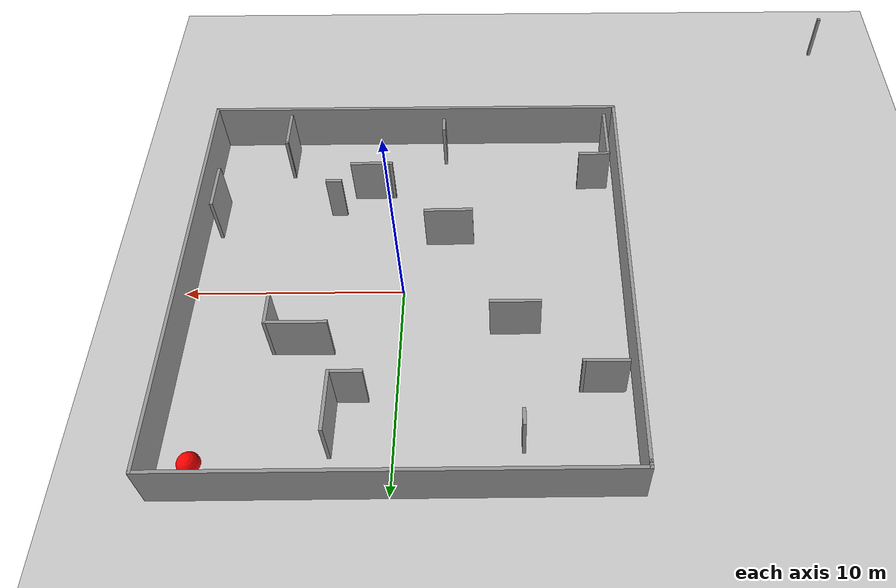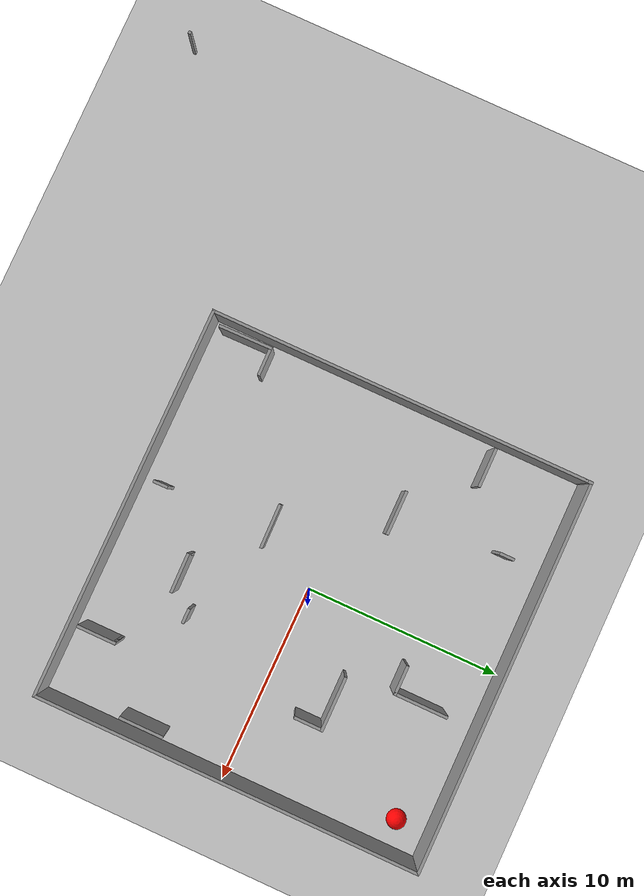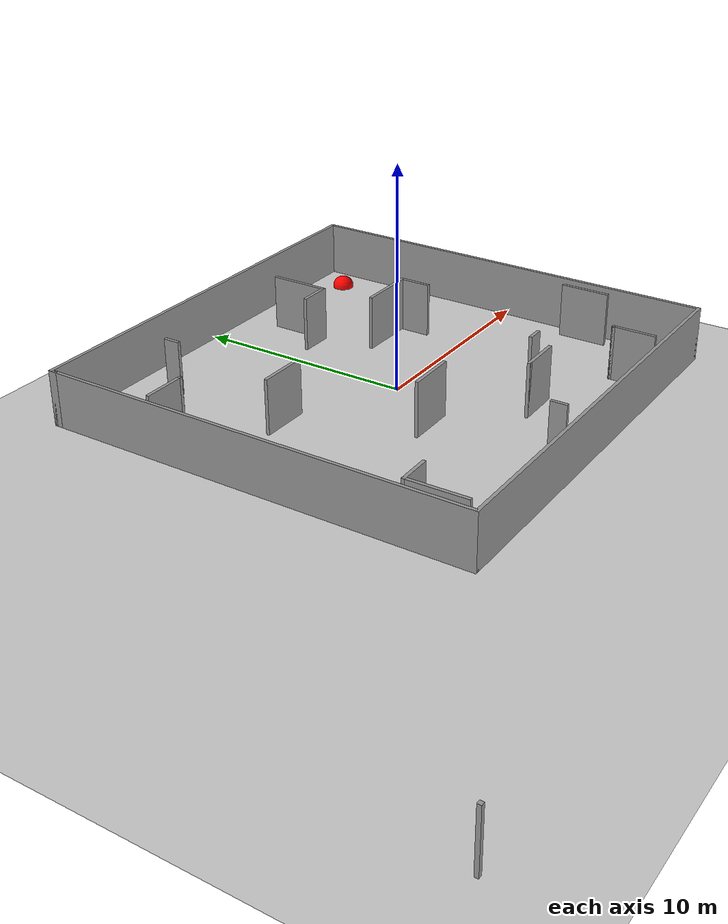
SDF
<sdf version="1.7">
 <world name="default">
  <light name="sun" type="directional">
   <pose>0 0 10 0 -0 0</pose>
   <diffuse>0.8 0.8 0.8 1</diffuse>
   <specular>0.2 0.2 0.2 1</specular>
   <attenuation>
    <range>1000</range>
    <constant>0.9</constant>
    <linear>0.01</linear>
    <quadratic>0.001</quadratic>
   </attenuation>
   <direction>-0.5 0.1 -0.9</direction>
   <spot><inner_angle>0</inner_angle><outer_angle>0</outer_angle><falloff>0</falloff></spot>
  </light>
  <model name="ground_plane">
   <static>1</static>
   <link name="link">
    <collision name="collision">
     <geometry><plane><normal>0 0 1</normal><size>100 100</size></plane></geometry>
     <surface><friction><ode><mu>100</mu><mu2>50</mu2></ode></friction></surface>
    </collision>
    <visual name="visual">
     <cast_shadows>0</cast_shadows>
     <geometry><plane><normal>0 0 1</normal><size>100 100</size></plane></geometry>
     <material>
      <script><uri>file://media/materials/scripts/gazebo.material</uri><name>Gazebo/Grey</name></script>
     </material>
    </visual>
   </link>
  </model>
  <gravity>0 0 -9.8</gravity>
  <magnetic_field>6e-06 2.3e-05 -4.2e-05</magnetic_field>
  <atmosphere type="adiabatic"/>
  <physics type="ode">
   <max_step_size>0.001</max_step_size>
   <real_time_factor>1</real_time_factor>
   <real_time_update_rate>1000</real_time_update_rate>
  </physics>
  <scene><ambient>0.4 0.4 0.4 1</ambient><background>0.7 0.7 0.7 1</background><shadows>1</shadows></scene>
  <spherical_coordinates>
   <surface_model>EARTH_WGS84</surface_model>
   <latitude_deg>0</latitude_deg>
   <longitude_deg>0</longitude_deg>
   <elevation>0</elevation>
   <heading_deg>0</heading_deg>
  </spherical_coordinates>
  <model name="ObstacleCoruse1">
   <pose>-3.57605 5.23593 0 0 -0 0</pose>
   <link name="Wall_0">
    <collision name="Wall_0_Collision">
     <geometry><box><size>2 0.15 2.5</size></box></geometry>
     <pose>0 0 1.25 0 -0 0</pose>
    </collision>
    <visual name="Wall_0_Visual">
     <pose>0 0 1.25 0 -0 0</pose>
     <geometry><box><size>2 0.15 2.5</size></box></geometry>
     <material>
      <script><uri>file://media/materials/scripts/gazebo.material</uri><name>Gazebo/Grey</name></script>
      <ambient>1 1 1 1</ambient>
     </material>
     <meta><layer>0</layer></meta>
    </visual>
    <pose>-5.24025 0.008745 0 0 -0 0</pose>
   </link>
   <link name="Wall_1">
    <collision name="Wall_1_Collision">
     <geometry><box><size>0.15 0.15 2.5</size></box></geometry>
     <pose>0 0 1.25 0 -0 0</pose>
    </collision>
    <visual name="Wall_1_Visual">
     <pose>0 0 1.25 0 -0 0</pose>
     <geometry><box><size>0.15 0.15 2.5</size></box></geometry>
     <material>
      <script><uri>file://media/materials/scripts/gazebo.material</uri><name>Gazebo/Grey</name></script>
      <ambient>1 1 1 1</ambient>
     </material>
     <meta><layer>0</layer></meta>
    </visual>
    <pose>-4.31525 0.008745 0 0 -0 0</pose>
   </link>
   <link name="Wall_3">
    <collision name="Wall_3_Collision">
     <geometry><box><size>0.75 0.15 2.5</size></box></geometry>
     <pose>0 0 1.25 0 -0 0</pose>
    </collision>
    <visual name="Wall_3_Visual">
     <pose>0 0 1.25 0 -0 0</pose>
     <geometry><box><size>0.75 0.15 2.5</size></box></geometry>
     <material>
      <script><uri>file://media/materials/scripts/gazebo.material</uri><name>Gazebo/Grey</name></script>
      <ambient>1 1 1 1</ambient>
     </material>
     <meta><layer>0</layer></meta>
    </visual>
    <pose>-1.81022 2.54214 0 0 -0 -1.5708</pose>
   </link>
   <link name="Wall_5">
    <collision name="Wall_5_Collision">
     <geometry><box><size>2.25 0.15 2.5</size></box></geometry>
     <pose>0 0 1.25 0 -0 0</pose>
    </collision>
    <visual name="Wall_5_Visual">
     <pose>0 0 1.25 0 -0 0</pose>
     <geometry><box><size>2.25 0.15 2.5</size></box></geometry>
     <material>
      <script><uri>file://media/materials/scripts/gazebo.material</uri><name>Gazebo/Grey</name></script>
      <ambient>1 1 1 1</ambient>
     </material>
     <meta><layer>0</layer></meta>
    </visual>
    <pose>-1.52978 -2.99955 0 0 -0 0</pose>
   </link>
   <link name="Wall_8">
    <collision name="Wall_8_Collision">
     <geometry><box><size>2.75 0.15 2.5</size></box></geometry>
     <pose>0 0 1.25 0 -0 0</pose>
    </collision>
    <visual name="Wall_8_Visual">
     <pose>0 0 1.25 0 -0 0</pose>
     <geometry><box><size>2.75 0.15 2.5</size></box></geometry>
     <material>
      <script><uri>file://media/materials/scripts/gazebo.material</uri><name>Gazebo/Grey</name></script>
      <ambient>1 1 1 1</ambient>
     </material>
     <meta><layer>0</layer></meta>
    </visual>
    <pose>6.16525 1.69955 0 0 -0 -1.5708</pose>
   </link>
   <link name="Wall_9">
    <collision name="Wall_9_Collision">
     <geometry><box><size>1.5 0.15 2.5</size></box></geometry>
     <pose>0 0 1.25 0 -0 0</pose>
    </collision>
    <visual name="Wall_9_Visual">
     <pose>0 0 1.25 0 -0 0</pose>
     <geometry><box><size>1.5 0.15 2.5</size></box></geometry>
     <material>
      <script><uri>file://media/materials/scripts/gazebo.material</uri><name>Gazebo/Grey</name></script>
      <ambient>1 1 1 1</ambient>
     </material>
     <meta><layer>0</layer></meta>
    </visual>
    <pose>5.49025 0.399546 0 0 -0 3.14159</pose>
   </link>
   <static>1</static>
  </model>
  <model name="ContourWorld">
   <pose>-6.15354 -3.16657 0 0 -0 0</pose>
   <link name="Wall_10">
    <collision name="Wall_10_Collision">
     <geometry><box><size>20 0.15 2.5</size></box></geometry>
     <pose>0 0 1.25 0 -0 0</pose>
    </collision>
    <visual name="Wall_10_Visual">
     <pose>0 0 1.25 0 -0 0</pose>
     <geometry><box><size>20 0.15 2.5</size></box></geometry>
     <material>
      <script><uri>file://media/materials/scripts/gazebo.material</uri><name>Gazebo/Grey</name></script>
      <ambient>1 1 1 1</ambient>
     </material>
     <meta><layer>0</layer></meta>
    </visual>
    <pose>5.88506 13.151 0 0 -0 3.14159</pose>
   </link>
   <link name="Wall_12">
    <collision name="Wall_12_Collision">
     <geometry><box><size>0.4 0.15 2.5</size></box></geometry>
     <pose>0 0 1.25 0 -0 0</pose>
    </collision>
    <visual name="Wall_12_Visual">
     <pose>0 0 1.25 0 -0 0</pose>
     <geometry><box><size>0.4 0.15 2.5</size></box></geometry>
     <material>
      <script><uri>file://media/materials/scripts/gazebo.material</uri><name>Gazebo/Grey</name></script>
      <ambient>1 1 1 1</ambient>
     </material>
     <meta><layer>0</layer></meta>
    </visual>
    <pose>-4.03994 13.026 0 0 -0 -1.5708</pose>
   </link>
   <link name="Wall_3">
    <collision name="Wall_3_Collision">
     <geometry><box><size>0.15 0.15 2.5</size></box></geometry>
     <pose>0 0 1.25 0 -0 0</pose>
    </collision>
    <visual name="Wall_3_Visual">
     <pose>0 0 1.25 0 -0 0</pose>
     <geometry><box><size>0.15 0.15 2.5</size></box></geometry>
     <material>
      <script><uri>file://media/materials/scripts/gazebo.material</uri><name>Gazebo/Grey</name></script>
      <ambient>1 1 1 1</ambient>
     </material>
     <meta><layer>0</layer></meta>
    </visual>
    <pose>-15.8101 -13.151 0 0 -0 0</pose>
   </link>
   <link name="Wall_6">
    <collision name="Wall_6_Collision">
     <geometry><box><size>19.5 0.15 2.5</size></box></geometry>
     <pose>0 0 1.25 0 -0 0</pose>
    </collision>
    <visual name="Wall_6_Visual">
     <pose>0 0 1.25 0 -0 0</pose>
     <geometry><box><size>19.5 0.15 2.5</size></box></geometry>
     <material>
      <script><uri>file://media/materials/scripts/gazebo.material</uri><name>Gazebo/Grey</name></script>
      <ambient>1 1 1 1</ambient>
     </material>
     <meta><layer>0</layer></meta>
    </visual>
    <pose>-4.03994 3.22596 0 0 -0 -1.5708</pose>
   </link>
   <link name="Wall_8">
    <collision name="Wall_8_Collision">
     <geometry><box><size>20 0.15 2.5</size></box></geometry>
     <pose>0 0 1.25 0 -0 0</pose>
    </collision>
    <visual name="Wall_8_Visual">
     <pose>0 0 1.25 0 -0 0</pose>
     <geometry><box><size>20 0.15 2.5</size></box></geometry>
     <material>
      <script><uri>file://media/materials/scripts/gazebo.material</uri><name>Gazebo/Grey</name></script>
      <ambient>1 1 1 1</ambient>
     </material>
     <meta><layer>0</layer></meta>
    </visual>
    <pose>5.88506 -6.44904 0 0 -0 0</pose>
   </link>
   <link name="Wall_9">
    <collision name="Wall_9_Collision">
     <geometry><box><size>19.75 0.15 2.5</size></box></geometry>
     <pose>0 0 1.25 0 -0 0</pose>
    </collision>
    <visual name="Wall_9_Visual">
     <pose>0 0 1.25 0 -0 0</pose>
     <geometry><box><size>19.75 0.15 2.5</size></box></geometry>
     <material>
      <script><uri>file://media/materials/scripts/gazebo.material</uri><name>Gazebo/Grey</name></script>
      <ambient>1 1 1 1</ambient>
     </material>
     <meta><layer>0</layer></meta>
    </visual>
    <pose>15.8101 3.35096 0 0 -0 1.5708</pose>
   </link>
   <static>1</static>
  </model>
  <model name="ObstacleCoruse1_0">
   <pose>5.92051 -2.94167 0 0 -0 1.57003</pose>
   <link name="Wall_0">
    <collision name="Wall_0_Collision">
     <geometry><box><size>2 0.15 2.5</size></box></geometry>
     <pose>0 0 1.25 0 -0 0</pose>
    </collision>
    <visual name="Wall_0_Visual">
     <pose>0 0 1.25 0 -0 0</pose>
     <geometry><box><size>2 0.15 2.5</size></box></geometry>
     <material>
      <script><uri>file://media/materials/scripts/gazebo.material</uri><name>Gazebo/Grey</name></script>
      <ambient>1 1 1 1</ambient>
     </material>
     <meta><layer>0</layer></meta>
    </visual>
    <pose>-5.24025 0.008745 0 0 -0 0</pose>
   </link>
   <link name="Wall_1">
    <collision name="Wall_1_Collision">
     <geometry><box><size>0.15 0.15 2.5</size></box></geometry>
     <pose>0 0 1.25 0 -0 0</pose>
    </collision>
    <visual name="Wall_1_Visual">
     <pose>0 0 1.25 0 -0 0</pose>
     <geometry><box><size>0.15 0.15 2.5</size></box></geometry>
     <material>
      <script><uri>file://media/materials/scripts/gazebo.material</uri><name>Gazebo/Grey</name></script>
      <ambient>1 1 1 1</ambient>
     </material>
     <meta><layer>0</layer></meta>
    </visual>
    <pose>-4.31525 0.008745 0 0 -0 0</pose>
   </link>
   <link name="Wall_3">
    <collision name="Wall_3_Collision">
     <geometry><box><size>0.75 0.15 2.5</size></box></geometry>
     <pose>0 0 1.25 0 -0 0</pose>
    </collision>
    <visual name="Wall_3_Visual">
     <pose>0 0 1.25 0 -0 0</pose>
     <geometry><box><size>0.75 0.15 2.5</size></box></geometry>
     <material>
      <script><uri>file://media/materials/scripts/gazebo.material</uri><name>Gazebo/Grey</name></script>
      <ambient>1 1 1 1</ambient>
     </material>
     <meta><layer>0</layer></meta>
    </visual>
    <pose>-1.81022 2.54214 0 0 -0 -1.5708</pose>
   </link>
   <link name="Wall_5">
    <collision name="Wall_5_Collision">
     <geometry><box><size>2.25 0.15 2.5</size></box></geometry>
     <pose>0 0 1.25 0 -0 0</pose>
    </collision>
    <visual name="Wall_5_Visual">
     <pose>0 0 1.25 0 -0 0</pose>
     <geometry><box><size>2.25 0.15 2.5</size></box></geometry>
     <material>
      <script><uri>file://media/materials/scripts/gazebo.material</uri><name>Gazebo/Grey</name></script>
      <ambient>1 1 1 1</ambient>
     </material>
     <meta><layer>0</layer></meta>
    </visual>
    <pose>-1.52978 -2.99955 0 0 -0 0</pose>
   </link>
   <link name="Wall_8">
    <collision name="Wall_8_Collision">
     <geometry><box><size>2.75 0.15 2.5</size></box></geometry>
     <pose>0 0 1.25 0 -0 0</pose>
    </collision>
    <visual name="Wall_8_Visual">
     <pose>0 0 1.25 0 -0 0</pose>
     <geometry><box><size>2.75 0.15 2.5</size></box></geometry>
     <material>
      <script><uri>file://media/materials/scripts/gazebo.material</uri><name>Gazebo/Grey</name></script>
      <ambient>1 1 1 1</ambient>
     </material>
     <meta><layer>0</layer></meta>
    </visual>
    <pose>6.16525 1.69955 0 0 -0 -1.5708</pose>
   </link>
   <link name="Wall_9">
    <collision name="Wall_9_Collision">
     <geometry><box><size>1.5 0.15 2.5</size></box></geometry>
     <pose>0 0 1.25 0 -0 0</pose>
    </collision>
    <visual name="Wall_9_Visual">
     <pose>0 0 1.25 0 -0 0</pose>
     <geometry><box><size>1.5 0.15 2.5</size></box></geometry>
     <material>
      <script><uri>file://media/materials/scripts/gazebo.material</uri><name>Gazebo/Grey</name></script>
      <ambient>1 1 1 1</ambient>
     </material>
     <meta><layer>0</layer></meta>
    </visual>
    <pose>5.49025 0.399546 0 0 -0 3.14159</pose>
   </link>
   <static>1</static>
  </model>
  <model name="ObstacleCoruse1_1">
   <pose>-3.5588 -5.92247 0 0 0 -3.12724</pose>
   <link name="Wall_0">
    <collision name="Wall_0_Collision">
     <geometry><box><size>2 0.15 2.5</size></box></geometry>
     <pose>0 0 1.25 0 -0 0</pose>
    </collision>
    <visual name="Wall_0_Visual">
     <pose>0 0 1.25 0 -0 0</pose>
     <geometry><box><size>2 0.15 2.5</size></box></geometry>
     <material>
      <script><uri>file://media/materials/scripts/gazebo.material</uri><name>Gazebo/Grey</name></script>
      <ambient>1 1 1 1</ambient>
     </material>
     <meta><layer>0</layer></meta>
    </visual>
    <pose>-5.24025 0.008745 0 0 -0 0</pose>
   </link>
   <link name="Wall_1">
    <collision name="Wall_1_Collision">
     <geometry><box><size>0.15 0.15 2.5</size></box></geometry>
     <pose>0 0 1.25 0 -0 0</pose>
    </collision>
    <visual name="Wall_1_Visual">
     <pose>0 0 1.25 0 -0 0</pose>
     <geometry><box><size>0.15 0.15 2.5</size></box></geometry>
     <material>
      <script><uri>file://media/materials/scripts/gazebo.material</uri><name>Gazebo/Grey</name></script>
      <ambient>1 1 1 1</ambient>
     </material>
     <meta><layer>0</layer></meta>
    </visual>
    <pose>-4.31525 0.008745 0 0 -0 0</pose>
   </link>
   <link name="Wall_3">
    <collision name="Wall_3_Collision">
     <geometry><box><size>0.75 0.15 2.5</size></box></geometry>
     <pose>0 0 1.25 0 -0 0</pose>
    </collision>
    <visual name="Wall_3_Visual">
     <pose>0 0 1.25 0 -0 0</pose>
     <geometry><box><size>0.75 0.15 2.5</size></box></geometry>
     <material>
      <script><uri>file://media/materials/scripts/gazebo.material</uri><name>Gazebo/Grey</name></script>
      <ambient>1 1 1 1</ambient>
     </material>
     <meta><layer>0</layer></meta>
    </visual>
    <pose>-1.81022 2.54214 0 0 -0 -1.5708</pose>
   </link>
   <link name="Wall_5">
    <collision name="Wall_5_Collision">
     <geometry><box><size>2.25 0.15 2.5</size></box></geometry>
     <pose>0 0 1.25 0 -0 0</pose>
    </collision>
    <visual name="Wall_5_Visual">
     <pose>0 0 1.25 0 -0 0</pose>
     <geometry><box><size>2.25 0.15 2.5</size></box></geometry>
     <material>
      <script><uri>file://media/materials/scripts/gazebo.material</uri><name>Gazebo/Grey</name></script>
      <ambient>1 1 1 1</ambient>
     </material>
     <meta><layer>0</layer></meta>
    </visual>
    <pose>-1.52978 -2.99955 0 0 -0 0</pose>
   </link>
   <link name="Wall_8">
    <collision name="Wall_8_Collision">
     <geometry><box><size>2.75 0.15 2.5</size></box></geometry>
     <pose>0 0 1.25 0 -0 0</pose>
    </collision>
    <visual name="Wall_8_Visual">
     <pose>0 0 1.25 0 -0 0</pose>
     <geometry><box><size>2.75 0.15 2.5</size></box></geometry>
     <material>
      <script><uri>file://media/materials/scripts/gazebo.material</uri><name>Gazebo/Grey</name></script>
      <ambient>1 1 1 1</ambient>
     </material>
     <meta><layer>0</layer></meta>
    </visual>
    <pose>6.16525 1.69955 0 0 -0 -1.5708</pose>
   </link>
   <link name="Wall_9">
    <collision name="Wall_9_Collision">
     <geometry><box><size>1.5 0.15 2.5</size></box></geometry>
     <pose>0 0 1.25 0 -0 0</pose>
    </collision>
    <visual name="Wall_9_Visual">
     <pose>0 0 1.25 0 -0 0</pose>
     <geometry><box><size>1.5 0.15 2.5</size></box></geometry>
     <material>
      <script><uri>file://media/materials/scripts/gazebo.material</uri><name>Gazebo/Grey</name></script>
      <ambient>1 1 1 1</ambient>
     </material>
     <meta><layer>0</layer></meta>
    </visual>
    <pose>5.49025 0.399546 0 0 -0 3.14159</pose>
   </link>
   <static>1</static>
  </model>
  <model name="goal_marker">
   <link name="link">
    <inertial>
     <mass>1</mass>
     <inertia><ixx>0.1</ixx><ixy>0</ixy><ixz>0</ixz><iyy>0.1</iyy><iyz>0</iyz><izz>0.1</izz></inertia>
    </inertial>
    <visual name="visual">
     <geometry><sphere><radius>0.5</radius></sphere></geometry>
     <material>
      <script><name>Gazebo/Grey</name><uri>file://media/materials/scripts/gazebo.material</uri></script>
      <shader type="pixel"/>
      <ambient>1 0 0 1</ambient>
     </material>
    </visual>
    <collision name="collision">
     <geometry><sphere><radius>0.5</radius></sphere></geometry>
     <surface>
      <friction>
       <ode><mu>1</mu><mu2>1</mu2><fdir1>0 0 0</fdir1><slip1>0</slip1><slip2>0</slip2></ode>
       <torsional>
        <coefficient>1</coefficient>
        <patch_radius>0</patch_radius>
        <surface_radius>0</surface_radius>
        <use_patch_radius>1</use_patch_radius>
        <ode><slip>0</slip></ode>
       </torsional>
      </friction>
      <bounce><restitution_coefficient>0</restitution_coefficient><threshold>1e+06</threshold></bounce>
      <contact>
       <collide_without_contact>0</collide_without_contact>
       <collide_without_contact_bitmask>1</collide_without_contact_bitmask>
       <collide_bitmask>1</collide_bitmask>
       <ode>
        <soft_cfm>0</soft_cfm>
        <soft_erp>0.2</soft_erp>
        <kp>1e+13</kp>
        <kd>1</kd>
        <max_vel>0.01</max_vel>
        <min_depth>0</min_depth>
       </ode>
       <bullet>
        <split_impulse>1</split_impulse>
        <split_impulse_penetration_threshold>-0.01</split_impulse_penetration_threshold>
        <soft_cfm>0</soft_cfm>
        <soft_erp>0.2</soft_erp>
        <kp>1e+13</kp>
        <kd>1</kd>
       </bullet>
      </contact>
     </surface>
    </collision>
   </link>
   <static>1</static>
   <pose>8.304 8.4622 0 0 -0 0</pose>
  </model>
 </world>
</sdf>
